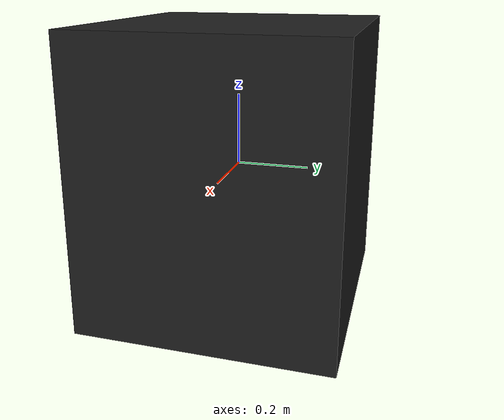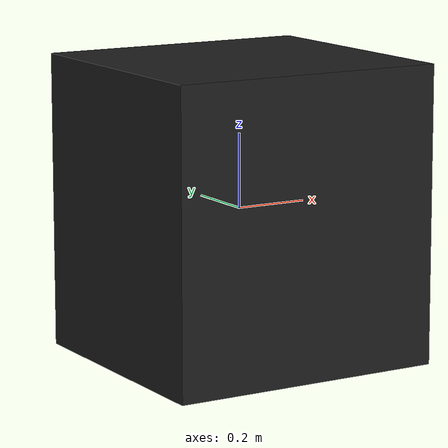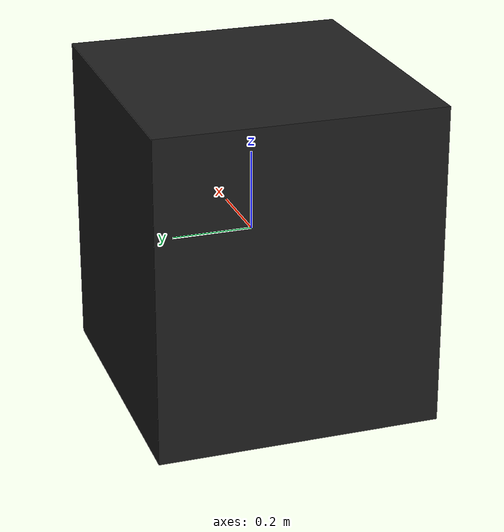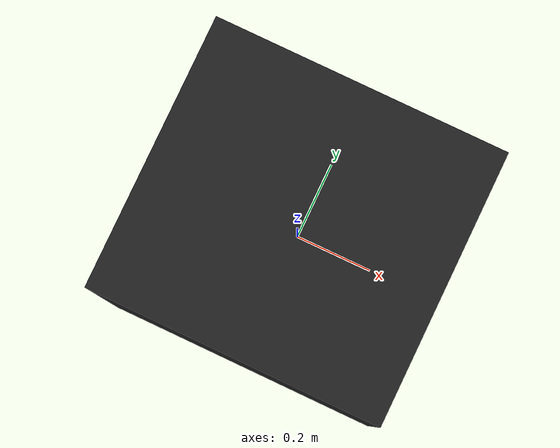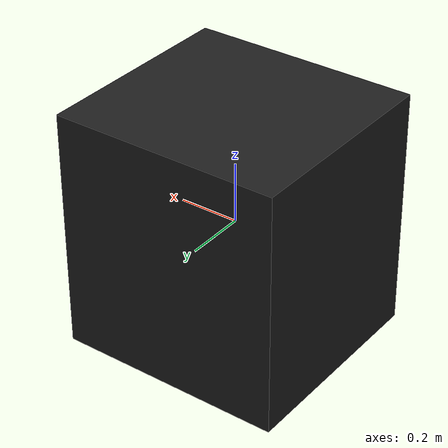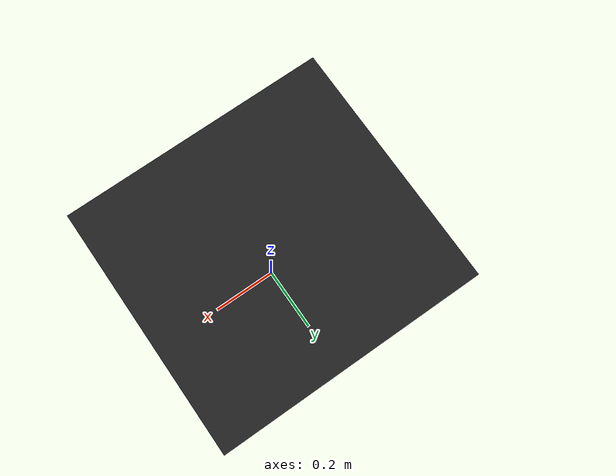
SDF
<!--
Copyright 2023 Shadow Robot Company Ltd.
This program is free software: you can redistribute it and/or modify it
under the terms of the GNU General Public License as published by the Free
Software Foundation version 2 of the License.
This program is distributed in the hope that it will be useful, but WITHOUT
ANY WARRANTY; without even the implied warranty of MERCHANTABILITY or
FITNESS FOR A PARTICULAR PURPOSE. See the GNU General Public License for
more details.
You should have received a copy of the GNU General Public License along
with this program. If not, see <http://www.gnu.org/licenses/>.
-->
<?xml version='1.0'?>

<sdf version="1.4">
<model name="robot_safe_store">
    <static>true</static>
    <link name="link">
      <collision name="collision_robot_safe_store">
        <geometry>
          <box>
            <size>0.75 0.7 0.8</size>
          </box>
        </geometry>
      </collision>
      <visual name="visual_base_robot_safe_store">
        <geometry>
          <box>
            <size>0.75 0.7 0.8</size>
          </box>
        </geometry>
        <material>
          <script>
            <uri>file://media/materials/scripts/gazebo.material</uri>
            <name>Gazebo/Black</name>
          </script>
        </material>
      </visual>
    </link>
  </model>
</sdf>
